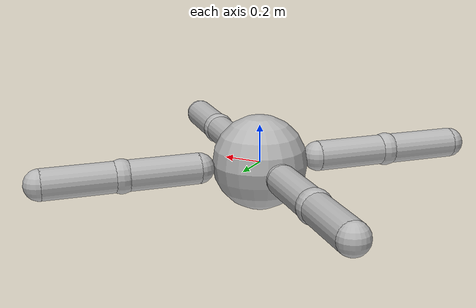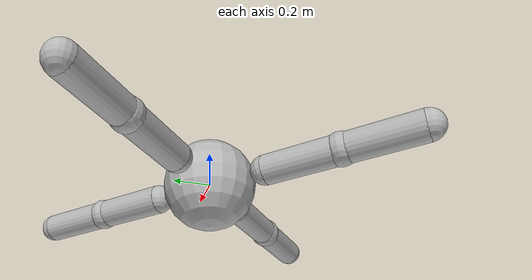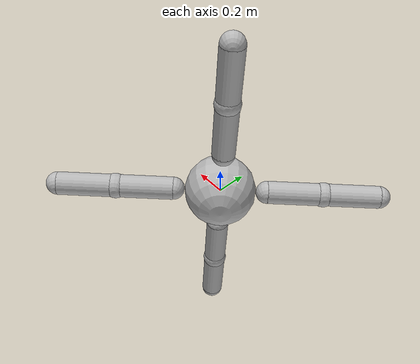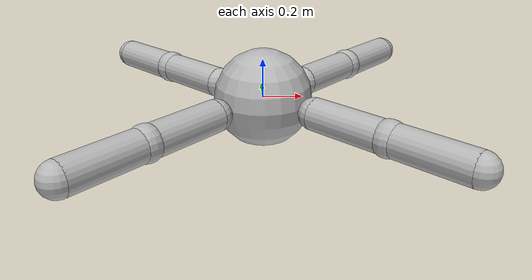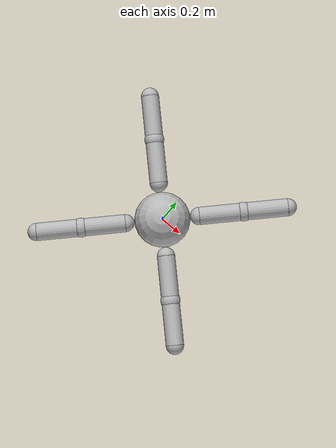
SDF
<?xml version="1.0" encoding="utf-8"?>
<sdf version="1.7">
  <model name="ant" canonical_link="torso">
    <link name="torso">
      <inertial>
        <mass>1.0</mass>
        <inertia>
          <ixx>0.025</ixx>
          <iyy>0.025</iyy>
          <izz>0.025</izz>
          <ixy>0.0</ixy>
          <ixz>0.0</ixz>
          <iyz>0.0</iyz>
        </inertia>
      </inertial>
      <visual name="torso_visual">
        <geometry>
          <sphere>
            <radius>0.25</radius>
          </sphere>
        </geometry>
      </visual>
      <collision name="torso_collision">
        <geometry>
          <box>
            <size>0.2886751345948129 0.2886751345948129 0.2886751345948129</size>
          </box>
        </geometry>
      </collision>
    </link>
    <link name="leg_front_left_upper">
      <pose relative_to="front_left_hip">-2.7755575615628914e-17 0.0 0.0 0.0 0.0 -5.551115123125783e-17</pose>
      <inertial>
        <mass>0.3</mass>
        <inertia>
          <ixx>0.0044800000000000005</ixx>
          <iyy>0.0044800000000000005</iyy>
          <izz>0.00096</izz>
          <ixy>0.0</ixy>
          <ixz>0.0</ixz>
          <iyz>0.0</iyz>
        </inertia>
        <pose>0.28 0.0 0.0 5.551115123125783e-17 1.5707963267948966 0.0</pose>
      </inertial>
      <visual name="leg_front_left_upper_visual">
        <geometry>
          <cylinder>
            <radius>0.08</radius>
            <length>0.4</length>
          </cylinder>
        </geometry>
        <pose>0.28 0.0 0.0 5.551115123125783e-17 1.5707963267948966 0.0</pose>
      </visual>
      <visual name="front_left_hip_visual">
        <geometry>
          <sphere>
            <radius>0.08</radius>
          </sphere>
        </geometry>
        <pose>0.07999999999999997 0.0 0.0 0.0 0.0 -5.551115123125783e-17</pose>
      </visual>
      <visual name="front_left_knee_visual">
        <geometry>
          <sphere>
            <radius>0.08800000000000001</radius>
          </sphere>
        </geometry>
        <pose>0.4800000000000001 5.551115123125783e-17 0.0 0.0 0.0 -5.551115123125783e-17</pose>
      </visual>
      <collision name="leg_front_left_upper_collision">
        <geometry>
          <cylinder>
            <radius>0.08</radius>
            <length>0.4</length>
          </cylinder>
        </geometry>
        <pose>0.28 0.0 0.0 5.551115123125783e-17 1.5707963267948966 0.0</pose>
      </collision>
    </link>
    <link name="leg_front_left_lower">
      <pose relative_to="front_left_knee">5.551115123125783e-17 0.0 0.0 0.0 0.0 -5.551115123125783e-17</pose>
      <inertial>
        <mass>0.2</mass>
        <inertia>
          <ixx>0.002986666666666667</ixx>
          <iyy>0.002986666666666667</iyy>
          <izz>0.00064</izz>
          <ixy>0.0</ixy>
          <ixz>0.0</ixz>
          <iyz>0.0</iyz>
        </inertia>
        <pose>0.20000000000000007 0.0 0.0 5.551115123125783e-17 1.5707963267948966 0.0</pose>
      </inertial>
      <visual name="leg_front_left_lower_visual">
        <geometry>
          <cylinder>
            <radius>0.08</radius>
            <length>0.4</length>
          </cylinder>
        </geometry>
        <pose>0.20000000000000007 0.0 0.0 5.551115123125783e-17 1.5707963267948966 0.0</pose>
      </visual>
      <visual name="front_left_foot_visual">
        <geometry>
          <sphere>
            <radius>0.08</radius>
          </sphere>
        </geometry>
        <pose>0.4000000000000001 0.0 0.0 0.0 0.0 -5.551115123125783e-17</pose>
      </visual>
      <collision name="leg_front_left_lower_collision">
        <geometry>
          <cylinder>
            <radius>0.08</radius>
            <length>0.4</length>
          </cylinder>
        </geometry>
        <pose>0.20000000000000007 0.0 0.0 5.551115123125783e-17 1.5707963267948966 0.0</pose>
      </collision>
      <collision name="front_left_foot_collision">
        <geometry>
          <sphere>
            <radius>0.08</radius>
          </sphere>
        </geometry>
        <pose>0.4000000000000001 0.0 0.0 0.0 0.0 -5.551115123125783e-17</pose>
      </collision>
    </link>
    <link name="leg_front_right_upper">
      <pose relative_to="front_right_hip">-2.7755575615628914e-17 0.0 0.0 0.0 0.0 5.551115123125783e-17</pose>
      <inertial>
        <mass>0.3</mass>
        <inertia>
          <ixx>0.0044800000000000005</ixx>
          <iyy>0.0044800000000000005</iyy>
          <izz>0.00096</izz>
          <ixy>0.0</ixy>
          <ixz>0.0</ixz>
          <iyz>0.0</iyz>
        </inertia>
        <pose>0.28 0.0 0.0 -5.551115123125783e-17 1.5707963267948966 0.0</pose>
      </inertial>
      <visual name="leg_front_right_upper_visual">
        <geometry>
          <cylinder>
            <radius>0.08</radius>
            <length>0.4</length>
          </cylinder>
        </geometry>
        <pose>0.28 0.0 0.0 -5.551115123125783e-17 1.5707963267948966 0.0</pose>
      </visual>
      <visual name="front_right_hip_visual">
        <geometry>
          <sphere>
            <radius>0.08</radius>
          </sphere>
        </geometry>
        <pose>0.07999999999999997 0.0 0.0 0.0 0.0 5.551115123125783e-17</pose>
      </visual>
      <visual name="front_right_knee_visual">
        <geometry>
          <sphere>
            <radius>0.08800000000000001</radius>
          </sphere>
        </geometry>
        <pose>0.4800000000000001 -5.551115123125783e-17 0.0 0.0 0.0 5.551115123125783e-17</pose>
      </visual>
      <collision name="leg_front_right_upper_collision">
        <geometry>
          <cylinder>
            <radius>0.08</radius>
            <length>0.4</length>
          </cylinder>
        </geometry>
        <pose>0.28 0.0 0.0 -5.551115123125783e-17 1.5707963267948966 0.0</pose>
      </collision>
    </link>
    <link name="leg_front_right_lower">
      <pose relative_to="front_right_knee">5.551115123125783e-17 0.0 0.0 0.0 0.0 5.551115123125783e-17</pose>
      <inertial>
        <mass>0.2</mass>
        <inertia>
          <ixx>0.002986666666666667</ixx>
          <iyy>0.002986666666666667</iyy>
          <izz>0.00064</izz>
          <ixy>0.0</ixy>
          <ixz>0.0</ixz>
          <iyz>0.0</iyz>
        </inertia>
        <pose>0.20000000000000007 0.0 0.0 -5.551115123125783e-17 1.5707963267948966 0.0</pose>
      </inertial>
      <visual name="leg_front_right_lower_visual">
        <geometry>
          <cylinder>
            <radius>0.08</radius>
            <length>0.4</length>
          </cylinder>
        </geometry>
        <pose>0.20000000000000007 0.0 0.0 -5.551115123125783e-17 1.5707963267948966 0.0</pose>
      </visual>
      <visual name="front_right_foot_visual">
        <geometry>
          <sphere>
            <radius>0.08</radius>
          </sphere>
        </geometry>
        <pose>0.4000000000000001 0.0 0.0 0.0 0.0 5.551115123125783e-17</pose>
      </visual>
      <collision name="leg_front_right_lower_collision">
        <geometry>
          <cylinder>
            <radius>0.08</radius>
            <length>0.4</length>
          </cylinder>
        </geometry>
        <pose>0.20000000000000007 0.0 0.0 -5.551115123125783e-17 1.5707963267948966 0.0</pose>
      </collision>
      <collision name="front_right_foot_collision">
        <geometry>
          <sphere>
            <radius>0.08</radius>
          </sphere>
        </geometry>
        <pose>0.4000000000000001 0.0 0.0 0.0 0.0 5.551115123125783e-17</pose>
      </collision>
    </link>
    <link name="leg_back_left_upper">
      <pose relative_to="back_left_hip">0.0 0.0 0.0 0.0 0.0 5.551115123125783e-17</pose>
      <inertial>
        <mass>0.3</mass>
        <inertia>
          <ixx>0.0044800000000000005</ixx>
          <iyy>0.0044800000000000005</iyy>
          <izz>0.00096</izz>
          <ixy>0.0</ixy>
          <ixz>0.0</ixz>
          <iyz>0.0</iyz>
        </inertia>
        <pose>0.28 0.0 0.0 -5.551115123125783e-17 1.5707963267948966 0.0</pose>
      </inertial>
      <visual name="leg_back_left_upper_visual">
        <geometry>
          <cylinder>
            <radius>0.08</radius>
            <length>0.4</length>
          </cylinder>
        </geometry>
        <pose>0.28 0.0 0.0 -5.551115123125783e-17 1.5707963267948966 0.0</pose>
      </visual>
      <visual name="back_left_hip_visual">
        <geometry>
          <sphere>
            <radius>0.08</radius>
          </sphere>
        </geometry>
        <pose>0.08 0.0 0.0 0.0 0.0 5.551115123125783e-17</pose>
      </visual>
      <visual name="back_left_knee_visual">
        <geometry>
          <sphere>
            <radius>0.08800000000000001</radius>
          </sphere>
        </geometry>
        <pose>0.4800000000000001 0.0 0.0 0.0 0.0 5.551115123125783e-17</pose>
      </visual>
      <collision name="leg_back_left_upper_collision">
        <geometry>
          <cylinder>
            <radius>0.08</radius>
            <length>0.4</length>
          </cylinder>
        </geometry>
        <pose>0.28 0.0 0.0 -5.551115123125783e-17 1.5707963267948966 0.0</pose>
      </collision>
    </link>
    <link name="leg_back_left_lower">
      <pose relative_to="back_left_knee">1.1102230246251565e-16 0.0 0.0 0.0 0.0 5.551115123125783e-17</pose>
      <inertial>
        <mass>0.2</mass>
        <inertia>
          <ixx>0.002986666666666667</ixx>
          <iyy>0.002986666666666667</iyy>
          <izz>0.00064</izz>
          <ixy>0.0</ixy>
          <ixz>0.0</ixz>
          <iyz>0.0</iyz>
        </inertia>
        <pose>0.20000000000000012 0.0 0.0 -5.551115123125783e-17 1.5707963267948966 0.0</pose>
      </inertial>
      <visual name="leg_back_left_lower_visual">
        <geometry>
          <cylinder>
            <radius>0.08</radius>
            <length>0.4</length>
          </cylinder>
        </geometry>
        <pose>0.20000000000000012 0.0 0.0 -5.551115123125783e-17 1.5707963267948966 0.0</pose>
      </visual>
      <visual name="back_left_foot_visual">
        <geometry>
          <sphere>
            <radius>0.08</radius>
          </sphere>
        </geometry>
        <pose>0.40000000000000013 0.0 0.0 0.0 0.0 5.551115123125783e-17</pose>
      </visual>
      <collision name="leg_back_left_lower_collision">
        <geometry>
          <cylinder>
            <radius>0.08</radius>
            <length>0.4</length>
          </cylinder>
        </geometry>
        <pose>0.20000000000000012 0.0 0.0 -5.551115123125783e-17 1.5707963267948966 0.0</pose>
      </collision>
      <collision name="back_left_foot_collision">
        <geometry>
          <sphere>
            <radius>0.08</radius>
          </sphere>
        </geometry>
        <pose>0.40000000000000013 0.0 0.0 0.0 0.0 5.551115123125783e-17</pose>
      </collision>
    </link>
    <link name="leg_back_right_upper">
      <pose relative_to="back_right_hip">0.0 0.0 0.0 0.0 0.0 -5.551115123125783e-17</pose>
      <inertial>
        <mass>0.3</mass>
        <inertia>
          <ixx>0.0044800000000000005</ixx>
          <iyy>0.0044800000000000005</iyy>
          <izz>0.00096</izz>
          <ixy>0.0</ixy>
          <ixz>0.0</ixz>
          <iyz>0.0</iyz>
        </inertia>
        <pose>0.28 0.0 0.0 5.551115123125783e-17 1.5707963267948966 0.0</pose>
      </inertial>
      <visual name="leg_back_right_upper_visual">
        <geometry>
          <cylinder>
            <radius>0.08</radius>
            <length>0.4</length>
          </cylinder>
        </geometry>
        <pose>0.28 0.0 0.0 5.551115123125783e-17 1.5707963267948966 0.0</pose>
      </visual>
      <visual name="back_right_hip_visual">
        <geometry>
          <sphere>
            <radius>0.08</radius>
          </sphere>
        </geometry>
        <pose>0.08 0.0 0.0 0.0 0.0 -5.551115123125783e-17</pose>
      </visual>
      <visual name="back_right_knee_visual">
        <geometry>
          <sphere>
            <radius>0.08800000000000001</radius>
          </sphere>
        </geometry>
        <pose>0.4800000000000001 0.0 0.0 0.0 0.0 -5.551115123125783e-17</pose>
      </visual>
      <collision name="leg_back_right_upper_collision">
        <geometry>
          <cylinder>
            <radius>0.08</radius>
            <length>0.4</length>
          </cylinder>
        </geometry>
        <pose>0.28 0.0 0.0 5.551115123125783e-17 1.5707963267948966 0.0</pose>
      </collision>
    </link>
    <link name="leg_back_right_lower">
      <pose relative_to="back_right_knee">1.1102230246251565e-16 0.0 0.0 0.0 0.0 -5.551115123125783e-17</pose>
      <inertial>
        <mass>0.2</mass>
        <inertia>
          <ixx>0.002986666666666667</ixx>
          <iyy>0.002986666666666667</iyy>
          <izz>0.00064</izz>
          <ixy>0.0</ixy>
          <ixz>0.0</ixz>
          <iyz>0.0</iyz>
        </inertia>
        <pose>0.20000000000000012 0.0 0.0 5.551115123125783e-17 1.5707963267948966 0.0</pose>
      </inertial>
      <visual name="leg_back_right_lower_visual">
        <geometry>
          <cylinder>
            <radius>0.08</radius>
            <length>0.4</length>
          </cylinder>
        </geometry>
        <pose>0.20000000000000012 0.0 0.0 5.551115123125783e-17 1.5707963267948966 0.0</pose>
      </visual>
      <visual name="back_right_foot_visual">
        <geometry>
          <sphere>
            <radius>0.08</radius>
          </sphere>
        </geometry>
        <pose>0.40000000000000013 0.0 0.0 0.0 0.0 -5.551115123125783e-17</pose>
      </visual>
      <collision name="leg_back_right_lower_collision">
        <geometry>
          <cylinder>
            <radius>0.08</radius>
            <length>0.4</length>
          </cylinder>
        </geometry>
        <pose>0.20000000000000012 0.0 0.0 5.551115123125783e-17 1.5707963267948966 0.0</pose>
      </collision>
      <collision name="back_right_foot_collision">
        <geometry>
          <sphere>
            <radius>0.08</radius>
          </sphere>
        </geometry>
        <pose>0.40000000000000013 0.0 0.0 0.0 0.0 -5.551115123125783e-17</pose>
      </collision>
    </link>
    <joint name="front_left_hip" type="revolute">
      <parent>torso</parent>
      <child>leg_front_left_upper</child>
      <pose relative_to="torso">0.1767766952966369 0.1767766952966369 0.0 0.0 0.0 0.7853981633974484</pose>
      <axis>
        <xyz>0 0 1</xyz>
        <limit>
          <lower>-0.5235987755982988</lower>
          <upper>0.5235987755982988</upper>
        </limit>
      </axis>
    </joint>
    <joint name="front_left_knee" type="revolute">
      <parent>leg_front_left_upper</parent>
      <child>leg_front_left_lower</child>
      <pose relative_to="leg_front_left_upper">0.48 0.0 0.0 0.0 0.0 -5.551115123125783e-17</pose>
      <axis>
        <xyz>0 1 0</xyz>
        <limit>
          <lower>0.5235987755982988</lower>
          <upper>1.2217304763960306</upper>
        </limit>
      </axis>
    </joint>
    <joint name="front_right_hip" type="revolute">
      <parent>torso</parent>
      <child>leg_front_right_upper</child>
      <pose relative_to="torso">0.1767766952966369 -0.1767766952966369 0.0 0.0 0.0 -0.7853981633974484</pose>
      <axis>
        <xyz>0 0 1</xyz>
        <limit>
          <lower>-0.5235987755982988</lower>
          <upper>0.5235987755982988</upper>
        </limit>
      </axis>
    </joint>
    <joint name="front_right_knee" type="revolute">
      <parent>leg_front_right_upper</parent>
      <child>leg_front_right_lower</child>
      <pose relative_to="leg_front_right_upper">0.48 0.0 0.0 0.0 0.0 5.551115123125783e-17</pose>
      <axis>
        <xyz>0 1 0</xyz>
        <limit>
          <lower>0.5235987755982988</lower>
          <upper>1.2217304763960306</upper>
        </limit>
      </axis>
    </joint>
    <joint name="back_left_hip" type="revolute">
      <parent>torso</parent>
      <child>leg_back_left_upper</child>
      <pose relative_to="torso">-0.1767766952966369 0.1767766952966369 0.0 0.0 0.0 2.356194490192345</pose>
      <axis>
        <xyz>0 0 1</xyz>
        <limit>
          <lower>-0.5235987755982988</lower>
          <upper>0.5235987755982988</upper>
        </limit>
      </axis>
    </joint>
    <joint name="back_left_knee" type="revolute">
      <parent>leg_back_left_upper</parent>
      <child>leg_back_left_lower</child>
      <pose relative_to="leg_back_left_upper">0.48000000000000004 0.0 0.0 0.0 0.0 5.551115123125783e-17</pose>
      <axis>
        <xyz>0 1 0</xyz>
        <limit>
          <lower>0.5235987755982988</lower>
          <upper>1.2217304763960306</upper>
        </limit>
      </axis>
    </joint>
    <joint name="back_right_hip" type="revolute">
      <parent>torso</parent>
      <child>leg_back_right_upper</child>
      <pose relative_to="torso">-0.1767766952966369 -0.1767766952966369 0.0 0.0 0.0 -2.356194490192345</pose>
      <axis>
        <xyz>0 0 1</xyz>
        <limit>
          <lower>-0.5235987755982988</lower>
          <upper>0.5235987755982988</upper>
        </limit>
      </axis>
    </joint>
    <joint name="back_right_knee" type="revolute">
      <parent>leg_back_right_upper</parent>
      <child>leg_back_right_lower</child>
      <pose relative_to="leg_back_right_upper">0.48000000000000004 0.0 0.0 0.0 0.0 -5.551115123125783e-17</pose>
      <axis>
        <xyz>0 1 0</xyz>
        <limit>
          <lower>0.5235987755982988</lower>
          <upper>1.2217304763960306</upper>
        </limit>
      </axis>
    </joint>
  </model>
</sdf>
